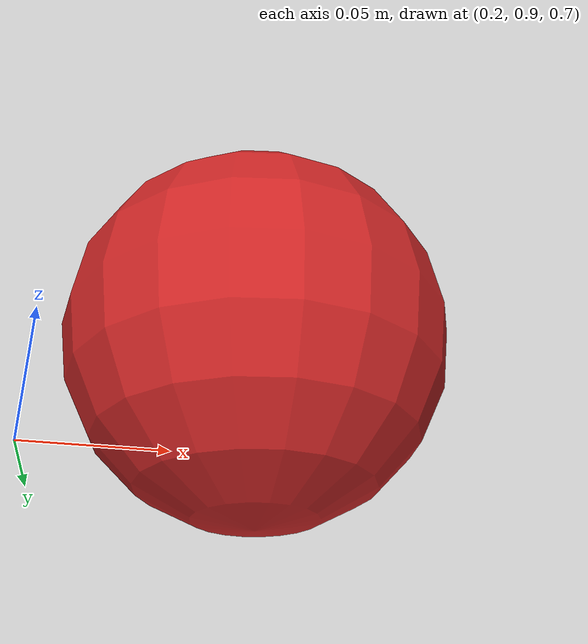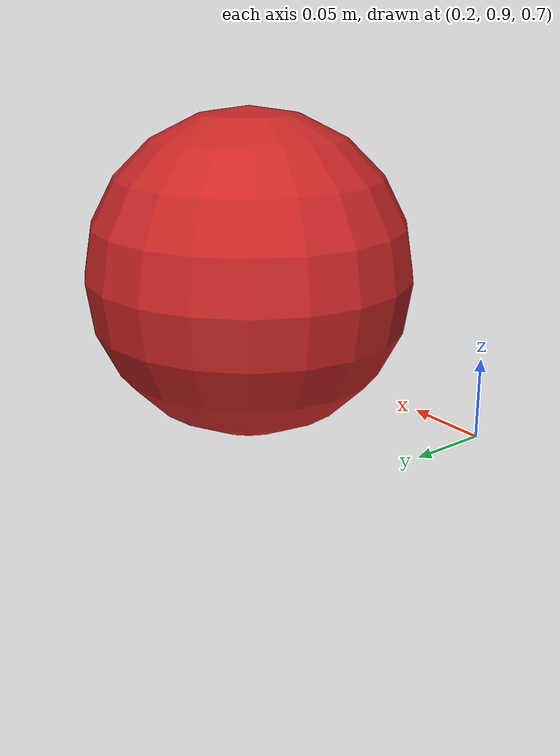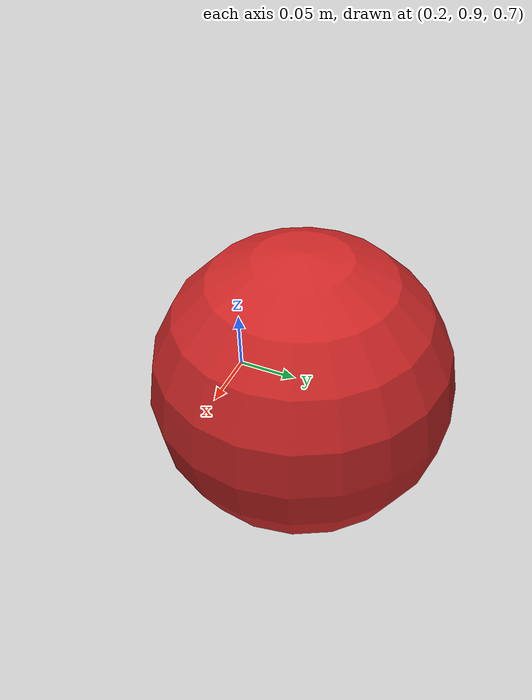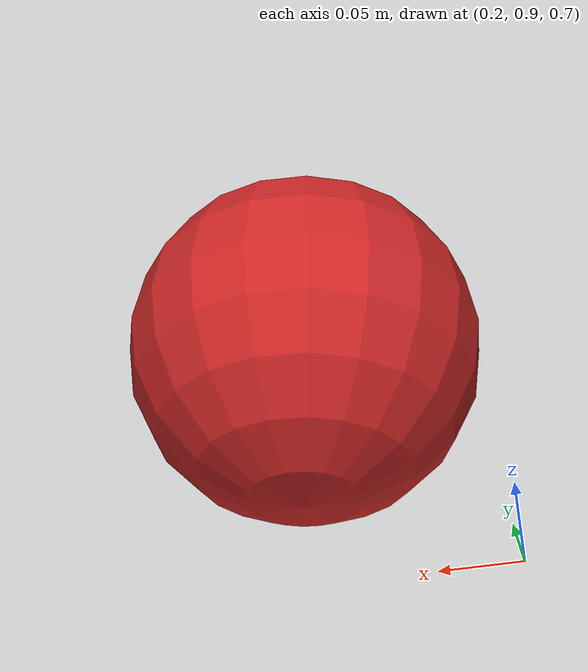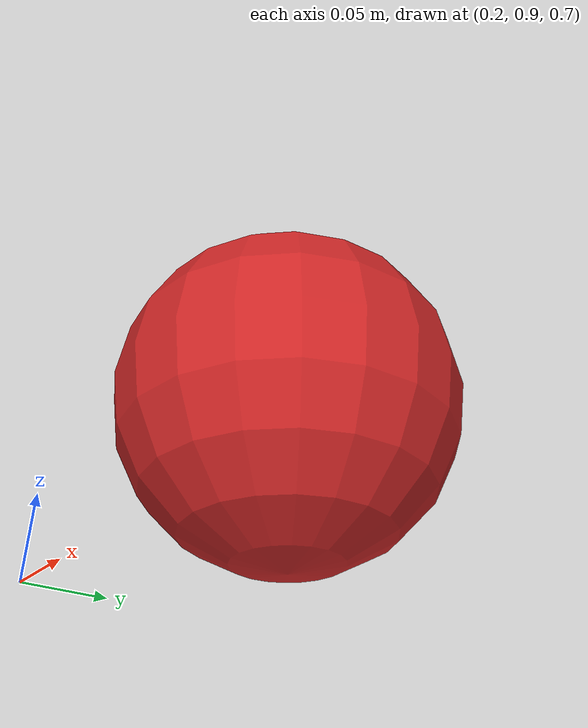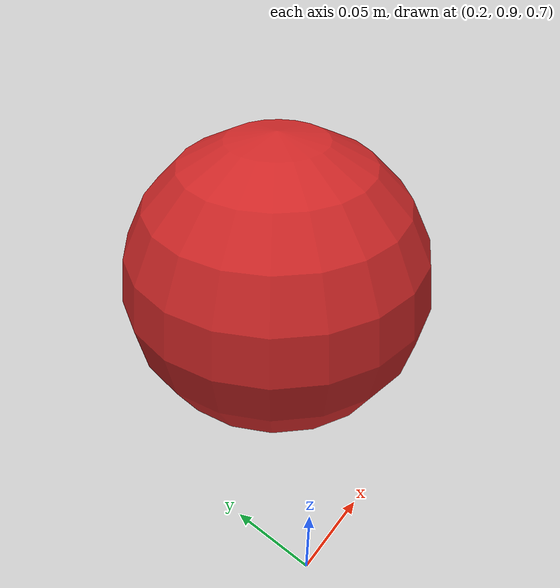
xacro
<?xml version="1.0"?>
<robot name="ball1" xmlns:xacro="http:/www.ros.org/wiki/xacro">

  <xacro:include filename="$(find test_gazebo_camera)/urdf/ball1.gazebo"/>
  <xacro:include filename="$(find test_gazebo_camera)/urdf/materials.xacro"/>
  <xacro:property name="xl" value="0.3"/>

  <link name="world"/>
  <joint name="fix" type="fixed">
    <origin xyz = "0 0 0.7" rpy="0 0 0"/>
    <parent link = "world"/>
    <child link = "link1"/>
  </joint>

  <link name="link1">
    <collision>
      <origin xyz = "${xl} 1 0.1" rpy="0 0 0"/>
      <geometry>
        <sphere radius="0.1"/>
      </geometry>
    </collision>

    <visual>
      <origin xyz = "${xl} 1 0.1" rpy="0 0 0"/>
      <geometry>
        <sphere radius="0.1"/>
      </geometry>
      <material name="red"/>
    </visual>

    <inertial>
      <mass value = "0.001"/>
      <origin xyz = "${xl} 1 0.1" rpy="0 0 0"/>
      <inertia ixx="0.0001" ixy = "0" ixz = "0" iyy= "0.0001" iyz="0" izz="0.0001"/>
    </inertial>
  </link>
</robot>
